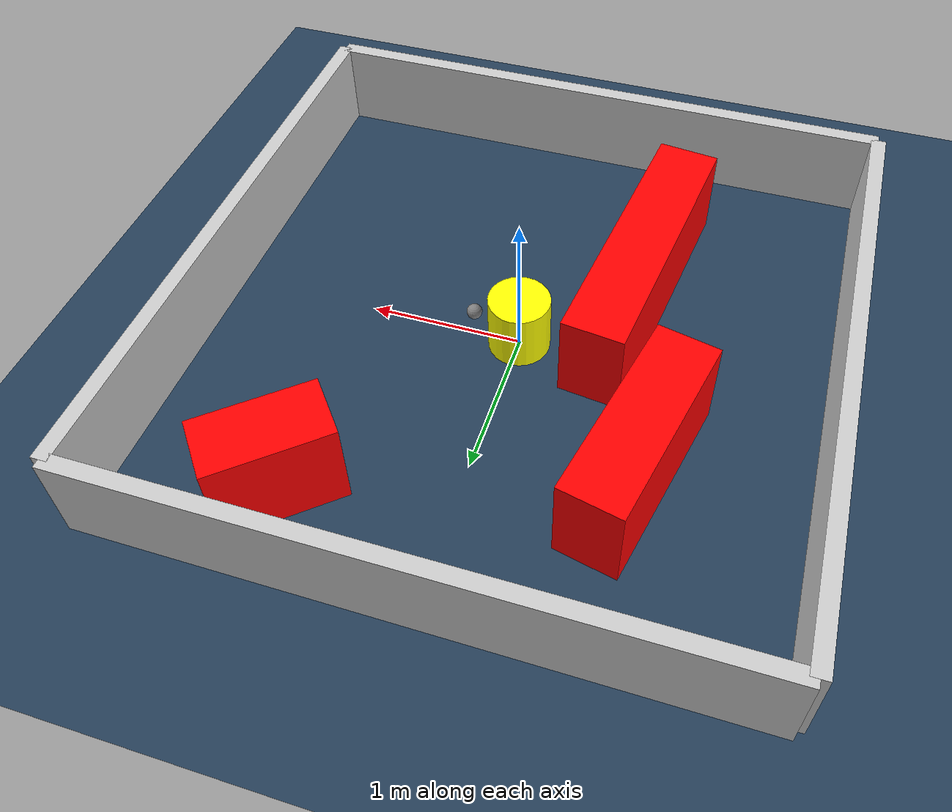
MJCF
<?xml version="1.0" ?>
<mujoco model="generated_environment">
  <option timestep="0.01" integrator="RK4" cone="elliptic"/>
  <default>
    <geom density="1"/>
  </default>
  <asset>
    <texture builtin="gradient" height="3072" rgb1="0.3 0.5 0.7" rgb2="0 0 0" type="skybox" width="512"/>
    <texture builtin="checker" height="300" mark="edge" markrgb="0.8 0.8 0.8" name="groundplane" rgb1="0.2 0.3 0.4" rgb2="0.1 0.2 0.3" type="2d" width="300"/>
    <material name="groundplane" reflectance="0.2" texrepeat="5 5" texture="groundplane" texuniform="true"/>
    <material name="robot" rgba="0.0 1.0 0.0 1"/>
  </asset>
  <worldbody>
    <light dir="0 0 -1" directional="true" pos="0 0 1.5"/>
    <geom condim="4" friction="1.0 0.005 0.001" material="groundplane" name="floor" size="0 0 0.05" type="plane"/>
    <body name="walls">
      <geom name="wall_1" condim="4" pos="-2.0 0.0 0.3" rgba="0.800000011920929 0.800000011920929 0.800000011920929 1.0" size="0.05 2.0 0.3" type="box"/>
      <geom name="wall_2" condim="4" pos="2.0 0.0 0.3" rgba="0.800000011920929 0.800000011920929 0.800000011920929 1.0" size="0.05 2.0 0.3" type="box"/>
      <geom name="wall_3" condim="4" pos="0.0 -2.0 0.3" rgba="0.800000011920929 0.800000011920929 0.800000011920929 1.0" size="2.0 0.05 0.3" type="box"/>
      <geom name="wall_4" condim="4" pos="0.0 2.0 0.3" rgba="0.800000011920929 0.800000011920929 0.800000011920929 1.0" size="2.0 0.05 0.3" type="box"/>
    </body>
    <body name="robot">
      <joint name="joint_x" type="slide" pos="0 0 0" axis="1 0 0"/>
      <joint name="joint_y" type="slide" pos="0 0 0" axis="0 1 0"/>
      <geom name="robot" type="sphere" pos="0.3 0.0 0.2" size="0.05" mass="5." friction="1.0 0.005 0.0001" condim="4" rgba="0.5 0.5 0.5 1.0"/>
      <site name="sensor_ball"/>
    </body>
    <body name="obstacle_movable_1">
      <geom name="obstacle_movable_1" condim="4" pos="0.0 0.0 0.2" euler="0 0 0.0" friction="1.0 0.005 0.001" rgba="1.0 1.0 0.0 1.0" size="0.2 0.2 0.0" type="cylinder" mass="0.1"/>
      <joint type="free"/>
    </body>
    <body name="obstacle_2_static">
      <geom name="obstacle_2_static" condim="4" pos="-0.9402567118247914 0.8034932440646669 0.3" euler="0 0 77.43982735127369" friction="1.0 0.005 0.001" rgba="1 0 0 1" size="0.6400043695338495 0.2 0.3" type="box"/>
    </body>
    <body name="obstacle_3_static">
      <geom name="obstacle_3_static" condim="4" pos="0.9947253337502184 1.475434554906217 0.3" euler="0 0 40.30609664429171" friction="1.0 0.005 0.001" rgba="1 0 0 1" size="0.3736482386129624 0.2 0.3" type="box"/>
    </body>
    <body name="obstacle_4_static">
      <geom name="obstacle_4_static" condim="4" pos="-0.6484416185804636 -0.5949685727413974 0.3" euler="0 0 262.881896355749" friction="1.0 0.005 0.001" rgba="1 0 0 1" size="0.918155844308169 0.2 0.3" type="box"/>
    </body>
  </worldbody>
  <actuator>
    <motor name="actuator_x" joint="joint_x" gear="1" ctrlrange="-1 1"/>
    <motor name="actuator_y" joint="joint_y" gear="1" ctrlrange="-1 1"/>
  </actuator>
</mujoco>
